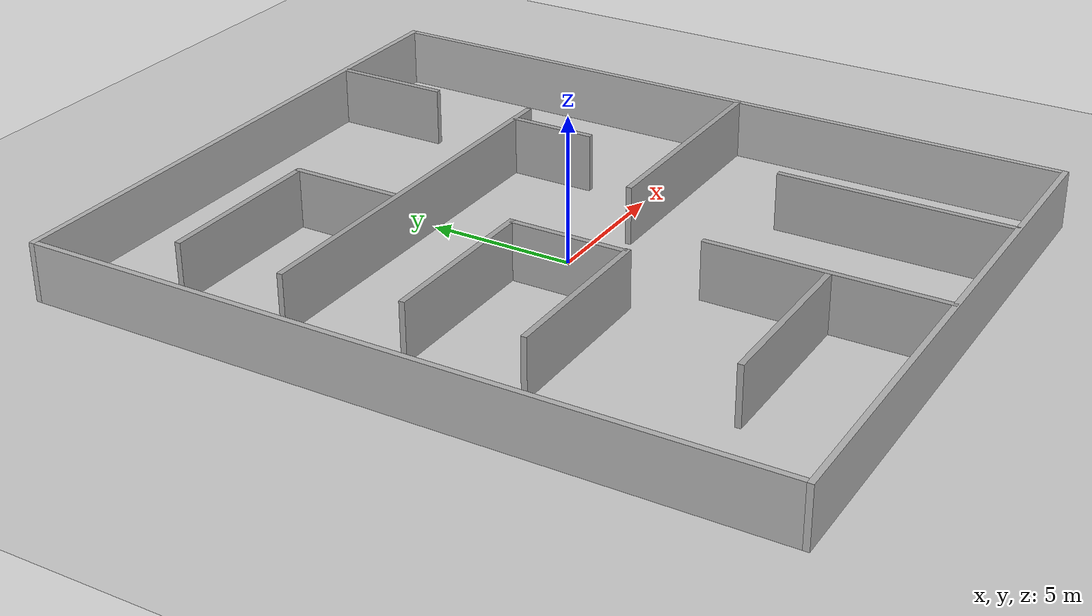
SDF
<sdf version="1.7">
 <world name="maze_lcp">
  <light name="sun" type="directional">
   <pose>0 0 10 0 -0 0</pose>
   <diffuse>0.8 0.8 0.8 1</diffuse>
   <specular>0.2 0.2 0.2 1</specular>
   <attenuation>
    <range>1000</range>
    <constant>0.9</constant>
    <linear>0.01</linear>
    <quadratic>0.001</quadratic>
   </attenuation>
   <direction>-0.5 0.1 -0.9</direction>
   <spot><inner_angle>0</inner_angle><outer_angle>0</outer_angle><falloff>0</falloff></spot>
  </light>
  <model name="ground_plane">
   <static>1</static>
   <link name="link">
    <collision name="collision">
     <geometry><plane><normal>0 0 1</normal><size>100 100</size></plane></geometry>
     <surface>
      <contact><collide_bitmask>65535</collide_bitmask></contact>
      <friction><ode><mu>100</mu><mu2>50</mu2></ode></friction>
     </surface>
    </collision>
    <visual name="visual">
     <cast_shadows>0</cast_shadows>
     <geometry><plane><normal>0 0 1</normal><size>100 100</size></plane></geometry>
     <material>
      <script><uri>file://media/materials/scripts/gazebo.material</uri><name>Gazebo/Grey</name></script>
     </material>
    </visual>
   </link>
  </model>
  <physics type="ode">
   <real_time_update_rate>1000</real_time_update_rate>
   <max_step_size>0.001</max_step_size>
   <real_time_factor>1</real_time_factor>
  </physics>
  <scene><ambient>0.5 0.5 0.5 1</ambient><background>0.7 0.7 0.7 1</background><shadows>0</shadows></scene>
  <model name="outer_north">
   <static>1</static>
   <pose>0 12.6 1 0 -0 0</pose>
   <link name="link">
    <collision name="c"><geometry><box><size>20.4 0.2 2</size></box></geometry></collision>
    <visual name="v">
     <geometry><box><size>20.4 0.2 2</size></box></geometry>
     <material><ambient>0.6 0.6 0.6 1</ambient><diffuse>0.7 0.7 0.7 1</diffuse></material>
    </visual>
   </link>
  </model>
  <model name="outer_south">
   <static>1</static>
   <pose>0 -12.6 1 0 -0 0</pose>
   <link name="link">
    <collision name="c"><geometry><box><size>20.4 0.2 2</size></box></geometry></collision>
    <visual name="v">
     <geometry><box><size>20.4 0.2 2</size></box></geometry>
     <material><ambient>0.6 0.6 0.6 1</ambient><diffuse>0.7 0.7 0.7 1</diffuse></material>
    </visual>
   </link>
  </model>
  <model name="outer_east">
   <static>1</static>
   <pose>10.1 0 1 0 -0 0</pose>
   <link name="link">
    <collision name="c"><geometry><box><size>0.2 25 2</size></box></geometry></collision>
    <visual name="v">
     <geometry><box><size>0.2 25 2</size></box></geometry>
     <material><ambient>0.6 0.6 0.6 1</ambient><diffuse>0.7 0.7 0.7 1</diffuse></material>
    </visual>
   </link>
  </model>
  <model name="outer_west">
   <static>1</static>
   <pose>-10.1 0 1 0 -0 0</pose>
   <link name="link">
    <collision name="c"><geometry><box><size>0.2 25 2</size></box></geometry></collision>
    <visual name="v">
     <geometry><box><size>0.2 25 2</size></box></geometry>
     <material><ambient>0.6 0.6 0.6 1</ambient><diffuse>0.7 0.7 0.7 1</diffuse></material>
    </visual>
   </link>
  </model>
  <model name="w1">
   <static>1</static>
   <pose>-5.00533 8.84328 1 0 -0 0</pose>
   <link name="link">
    <collision name="c"><geometry><box><size>6 0.2 2</size></box></geometry></collision>
    <visual name="v">
     <geometry><box><size>6 0.2 2</size></box></geometry>
     <material><ambient>0.55 0.55 0.55 1</ambient><diffuse>0.65 0.65 0.65 1</diffuse></material>
    </visual>
   </link>
  </model>
  <model name="w2">
   <static>1</static>
   <pose>-2.04432 6.91087 1 0 -0 0</pose>
   <link name="link">
    <collision name="c"><geometry><box><size>0.2 4 2</size></box></geometry></collision>
    <visual name="v">
     <geometry><box><size>0.2 4 2</size></box></geometry>
     <material><ambient>0.55 0.55 0.55 1</ambient><diffuse>0.65 0.65 0.65 1</diffuse></material>
    </visual>
   </link>
  </model>
  <model name="w3">
   <static>1</static>
   <pose>-1.05296 5 1 0 -0 0</pose>
   <link name="link">
    <collision name="c"><geometry><box><size>14 0.2 2</size></box></geometry></collision>
    <visual name="v">
     <geometry><box><size>14 0.2 2</size></box></geometry>
     <material><ambient>0.55 0.55 0.55 1</ambient><diffuse>0.65 0.65 0.65 1</diffuse></material>
    </visual>
   </link>
  </model>
  <model name="w4">
   <static>1</static>
   <pose>5 3.5 1 0 -0 0</pose>
   <link name="link">
    <collision name="c"><geometry><box><size>0.2 3 2</size></box></geometry></collision>
    <visual name="v">
     <geometry><box><size>0.2 3 2</size></box></geometry>
     <material><ambient>0.55 0.55 0.55 1</ambient><diffuse>0.65 0.65 0.65 1</diffuse></material>
    </visual>
   </link>
  </model>
  <model name="w5">
   <static>1</static>
   <pose>-4.65756 1 1 0 -0 0</pose>
   <link name="link">
    <collision name="c"><geometry><box><size>6 0.2 2</size></box></geometry></collision>
    <visual name="v">
     <geometry><box><size>6 0.2 2</size></box></geometry>
     <material><ambient>0.55 0.55 0.55 1</ambient><diffuse>0.65 0.65 0.65 1</diffuse></material>
    </visual>
   </link>
  </model>
  <model name="w6">
   <static>1</static>
   <pose>-1.76444 -1 1 0 -0 0</pose>
   <link name="link">
    <collision name="c"><geometry><box><size>0.2 4 2</size></box></geometry></collision>
    <visual name="v">
     <geometry><box><size>0.2 4 2</size></box></geometry>
     <material><ambient>0.55 0.55 0.55 1</ambient><diffuse>0.65 0.65 0.65 1</diffuse></material>
    </visual>
   </link>
  </model>
  <model name="w7">
   <static>1</static>
   <pose>-4.632 -3 1 0 -0 0</pose>
   <link name="link">
    <collision name="c"><geometry><box><size>6 0.2 2</size></box></geometry></collision>
    <visual name="v">
     <geometry><box><size>6 0.2 2</size></box></geometry>
     <material><ambient>0.55 0.55 0.55 1</ambient><diffuse>0.65 0.65 0.65 1</diffuse></material>
    </visual>
   </link>
  </model>
  <model name="w8">
   <static>1</static>
   <pose>6.08807 -1.00232 1 0 -0 0</pose>
   <link name="link">
    <collision name="c"><geometry><box><size>8 0.2 2</size></box></geometry></collision>
    <visual name="v">
     <geometry><box><size>8 0.2 2</size></box></geometry>
     <material><ambient>0.55 0.55 0.55 1</ambient><diffuse>0.65 0.65 0.65 1</diffuse></material>
    </visual>
   </link>
  </model>
  <model name="w9">
   <static>1</static>
   <pose>0 -8.6396 1 0 -0 0</pose>
   <link name="link">
    <collision name="c"><geometry><box><size>0.2 8 2</size></box></geometry></collision>
    <visual name="v">
     <geometry><box><size>0.2 8 2</size></box></geometry>
     <material><ambient>0.55 0.55 0.55 1</ambient><diffuse>0.65 0.65 0.65 1</diffuse></material>
    </visual>
   </link>
  </model>
  <model name="w10">
   <static>1</static>
   <pose>-3 -8.75367 1 0 -0 0</pose>
   <link name="link">
    <collision name="c"><geometry><box><size>6 0.2 2</size></box></geometry></collision>
    <visual name="v">
     <geometry><box><size>6 0.2 2</size></box></geometry>
     <material><ambient>0.55 0.55 0.55 1</ambient><diffuse>0.65 0.65 0.65 1</diffuse></material>
    </visual>
   </link>
  </model>
  <gravity>0 0 -9.8</gravity>
  <magnetic_field>6e-06 2.3e-05 -4.2e-05</magnetic_field>
  <atmosphere type="adiabatic"/>
  <audio><device>default</device></audio>
  <spherical_coordinates>
   <surface_model>EARTH_WGS84</surface_model>
   <latitude_deg>0</latitude_deg>
   <longitude_deg>0</longitude_deg>
   <elevation>0</elevation>
   <heading_deg>0</heading_deg>
  </spherical_coordinates>
  <model name="w9_clone">
   <static>1</static>
   <pose>5.47188 -8.61937 1 0 -0 0</pose>
   <link name="link">
    <collision name="c"><geometry><box><size>0.2 8 2</size></box></geometry></collision>
    <visual name="v">
     <geometry><box><size>0.2 8 2</size></box></geometry>
     <material><ambient>0.55 0.55 0.55 1</ambient><diffuse>0.65 0.65 0.65 1</diffuse></material>
    </visual>
   </link>
  </model>
  <model name="w2_clone">
   <static>1</static>
   <pose>5.6858 10.5651 1 0 -0 0</pose>
   <link name="link">
    <collision name="c"><geometry><box><size>0.2 4 2</size></box></geometry></collision>
    <visual name="v">
     <geometry><box><size>0.2 4 2</size></box></geometry>
     <material><ambient>0.55 0.55 0.55 1</ambient><diffuse>0.65 0.65 0.65 1</diffuse></material>
    </visual>
   </link>
  </model>
 </world>
</sdf>
